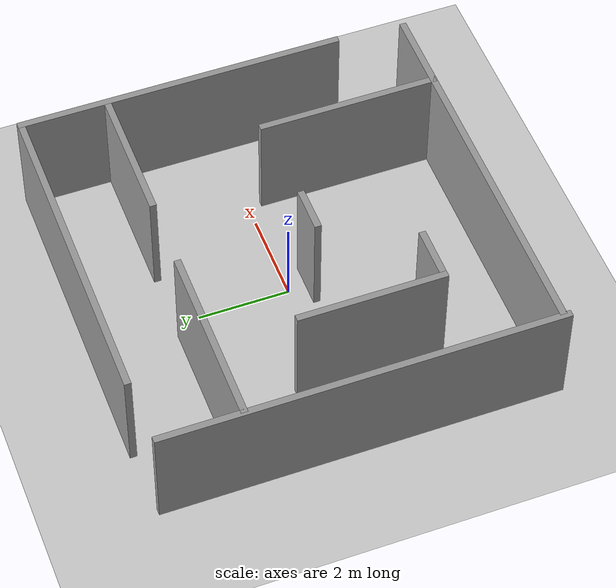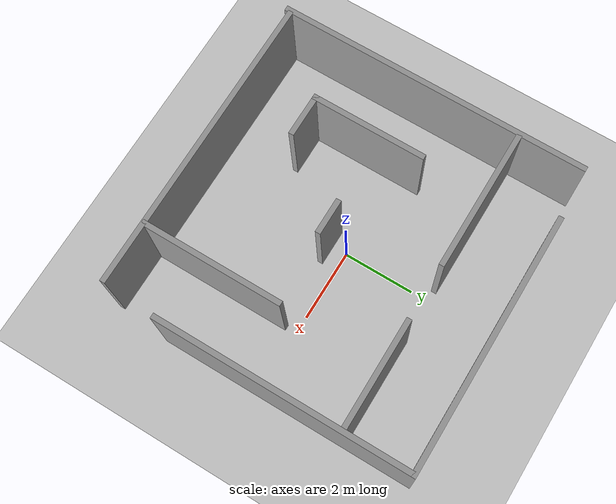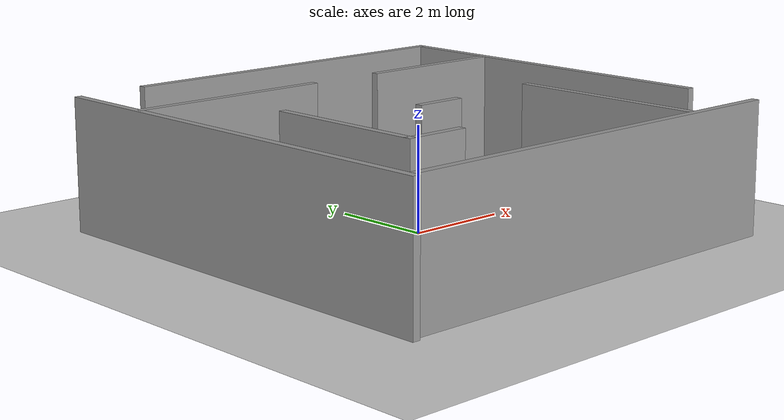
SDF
<sdf version="1.7">
 <world name="default">
  <light name="sun" type="directional">
   <pose>0 0 10 0 -0 0</pose>
   <diffuse>0.8 0.8 0.8 1</diffuse>
   <specular>0.2 0.2 0.2 1</specular>
   <attenuation>
    <range>1000</range>
    <constant>0.9</constant>
    <linear>0.01</linear>
    <quadratic>0.001</quadratic>
   </attenuation>
   <direction>-0.5 0.1 -0.9</direction>
   <spot><inner_angle>0</inner_angle><outer_angle>0</outer_angle><falloff>0</falloff></spot>
  </light>
  <model name="ground_plane">
   <static>1</static>
   <link name="link">
    <collision name="collision">
     <geometry><plane><normal>0 0 1</normal><size>100 100</size></plane></geometry>
     <surface>
      <contact><collide_bitmask>65535</collide_bitmask></contact>
      <friction><ode><mu>100</mu><mu2>50</mu2></ode></friction>
     </surface>
    </collision>
    <visual name="visual">
     <cast_shadows>0</cast_shadows>
     <geometry><plane><normal>0 0 1</normal><size>100 100</size></plane></geometry>
     <material>
      <script><uri>file://media/materials/scripts/gazebo.material</uri><name>Gazebo/Grey</name></script>
     </material>
    </visual>
   </link>
  </model>
  <gravity>0 0 -9.8</gravity>
  <magnetic_field>6e-06 2.3e-05 -4.2e-05</magnetic_field>
  <atmosphere type="adiabatic"/>
  <physics type="ode">
   <max_step_size>0.001</max_step_size>
   <real_time_factor>1</real_time_factor>
   <real_time_update_rate>1000</real_time_update_rate>
  </physics>
  <scene><ambient>0.4 0.4 0.4 1</ambient><background>0.7 0.7 0.7 1</background><shadows>1</shadows></scene>
  <spherical_coordinates>
   <surface_model>EARTH_WGS84</surface_model>
   <latitude_deg>0</latitude_deg>
   <longitude_deg>0</longitude_deg>
   <elevation>0</elevation>
   <heading_deg>0</heading_deg>
  </spherical_coordinates>
  <model name="maze">
   <pose>0.011934 0.032527 0 0 -0 0</pose>
   <link name="Wall_11">
    <collision name="Wall_11_Collision">
     <geometry><box><size>7.22687 0.15 2.5</size></box></geometry>
     <pose>0 0 1.25 0 -0 0</pose>
    </collision>
    <visual name="Wall_11_Visual">
     <pose>0 0 1.25 0 -0 0</pose>
     <geometry><box><size>7.22687 0.15 2.5</size></box></geometry>
     <material>
      <script><uri>file://media/materials/scripts/gazebo.material</uri><name>Gazebo/Grey</name></script>
      <ambient>1 1 1 1</ambient>
     </material>
     <meta><layer>0</layer></meta>
    </visual>
    <pose>4.29509 0.819392 0 0 -0 -1.5708</pose>
   </link>
   <link name="Wall_13">
    <collision name="Wall_13_Collision">
     <geometry><box><size>8.75 0.15 2.5</size></box></geometry>
     <pose>0 0 1.25 0 -0 0</pose>
    </collision>
    <visual name="Wall_13_Visual">
     <pose>0 0 1.25 0 -0 0</pose>
     <geometry><box><size>8.75 0.15 2.5</size></box></geometry>
     <material>
      <script><uri>file://media/materials/scripts/gazebo.material</uri><name>Gazebo/Grey</name></script>
      <ambient>1 1 1 1</ambient>
     </material>
     <meta><layer>0</layer></meta>
    </visual>
    <pose>-4.29509 -0.057827 0 0 -0 -1.5708</pose>
   </link>
   <link name="Wall_15">
    <collision name="Wall_15_Collision">
     <geometry><box><size>4 0.15 2.5</size></box></geometry>
     <pose>0 0 1.25 0 -0 0</pose>
    </collision>
    <visual name="Wall_15_Visual">
     <pose>0 0 1.25 0 -0 0</pose>
     <geometry><box><size>4 0.15 2.5</size></box></geometry>
     <material>
      <script><uri>file://media/materials/scripts/gazebo.material</uri><name>Gazebo/Grey</name></script>
      <ambient>1 1 1 1</ambient>
     </material>
     <meta><layer>0</layer></meta>
    </visual>
    <pose>-2.3007 2.46112 0 0 -0 0</pose>
   </link>
   <link name="Wall_17">
    <collision name="Wall_17_Collision">
     <geometry><box><size>3 0.15 2.5</size></box></geometry>
     <pose>0 0 1.25 0 -0 0</pose>
    </collision>
    <visual name="Wall_17_Visual">
     <pose>0 0 1.25 0 -0 0</pose>
     <geometry><box><size>3 0.15 2.5</size></box></geometry>
     <material>
      <script><uri>file://media/materials/scripts/gazebo.material</uri><name>Gazebo/Grey</name></script>
      <ambient>1 1 1 1</ambient>
     </material>
     <meta><layer>0</layer></meta>
    </visual>
    <pose>2.72258 2.46112 0 0 -0 3.14159</pose>
   </link>
   <link name="Wall_19">
    <collision name="Wall_19_Collision">
     <geometry><box><size>3.25 0.15 2.5</size></box></geometry>
     <pose>0 0 1.25 0 -0 0</pose>
    </collision>
    <visual name="Wall_19_Visual">
     <pose>0 0 1.25 0 -0 0</pose>
     <geometry><box><size>3.25 0.15 2.5</size></box></geometry>
     <material>
      <script><uri>file://media/materials/scripts/gazebo.material</uri><name>Gazebo/Grey</name></script>
      <ambient>1 1 1 1</ambient>
     </material>
     <meta><layer>0</layer></meta>
    </visual>
    <pose>-2.51403 -0.888634 0 0 -0 -1.5708</pose>
   </link>
   <link name="Wall_20">
    <collision name="Wall_20_Collision">
     <geometry><box><size>1.25 0.15 2.5</size></box></geometry>
     <pose>0 0 1.25 0 -0 0</pose>
    </collision>
    <visual name="Wall_20_Visual">
     <pose>0 0 1.25 0 -0 0</pose>
     <geometry><box><size>1.25 0.15 2.5</size></box></geometry>
     <material>
      <script><uri>file://media/materials/scripts/gazebo.material</uri><name>Gazebo/Grey</name></script>
      <ambient>1 1 1 1</ambient>
     </material>
     <meta><layer>0</layer></meta>
    </visual>
    <pose>-1.96403 -2.43863 0 0 -0 0</pose>
   </link>
   <link name="Wall_22">
    <collision name="Wall_22_Collision">
     <geometry><box><size>4 0.15 2.5</size></box></geometry>
     <pose>0 0 1.25 0 -0 0</pose>
    </collision>
    <visual name="Wall_22_Visual">
     <pose>0 0 1.25 0 -0 0</pose>
     <geometry><box><size>4 0.15 2.5</size></box></geometry>
     <material>
      <script><uri>file://media/materials/scripts/gazebo.material</uri><name>Gazebo/Grey</name></script>
      <ambient>1 1 1 1</ambient>
     </material>
     <meta><layer>0</layer></meta>
    </visual>
    <pose>2.48218 -2.32176 0 0 -0 1.5708</pose>
   </link>
   <link name="Wall_5">
    <collision name="Wall_5_Collision">
     <geometry><box><size>1 0.15 2.5</size></box></geometry>
     <pose>0 0 1.25 0 -0 0</pose>
    </collision>
    <visual name="Wall_5_Visual">
     <pose>0 0 1.25 0 -0 0</pose>
     <geometry><box><size>1 0.15 2.5</size></box></geometry>
     <material>
      <script><uri>file://media/materials/scripts/gazebo.material</uri><name>Gazebo/Grey</name></script>
      <ambient>1 1 1 1</ambient>
     </material>
     <meta><layer>0</layer></meta>
    </visual>
    <pose>0.030464 -0.510996 0 0 -0 3.14159</pose>
   </link>
   <link name="Wall_7">
    <collision name="Wall_7_Collision">
     <geometry><box><size>7.25 0.15 2.5</size></box></geometry>
     <pose>0 0 1.25 0 -0 0</pose>
    </collision>
    <visual name="Wall_7_Visual">
     <pose>0 0 1.25 0 -0 0</pose>
     <geometry><box><size>7.25 0.15 2.5</size></box></geometry>
     <material>
      <script><uri>file://media/materials/scripts/gazebo.material</uri><name>Gazebo/Grey</name></script>
      <ambient>1 1 1 1</ambient>
     </material>
     <meta><layer>0</layer></meta>
    </visual>
    <pose>0.74509 4.35783 0 0 -0 0</pose>
   </link>
   <link name="Wall_9">
    <collision name="Wall_9_Collision">
     <geometry><box><size>8.5 0.15 2.5</size></box></geometry>
     <pose>0 0 1.25 0 -0 0</pose>
    </collision>
    <visual name="Wall_9_Visual">
     <pose>0 0 1.25 0 -0 0</pose>
     <geometry><box><size>8.5 0.15 2.5</size></box></geometry>
     <material>
      <script><uri>file://media/materials/scripts/gazebo.material</uri><name>Gazebo/Grey</name></script>
      <ambient>1 1 1 1</ambient>
     </material>
     <meta><layer>0</layer></meta>
    </visual>
    <pose>-0.022183 -4.26989 0 0 -0 0</pose>
   </link>
   <static>1</static>
  </model>
 </world>
</sdf>
